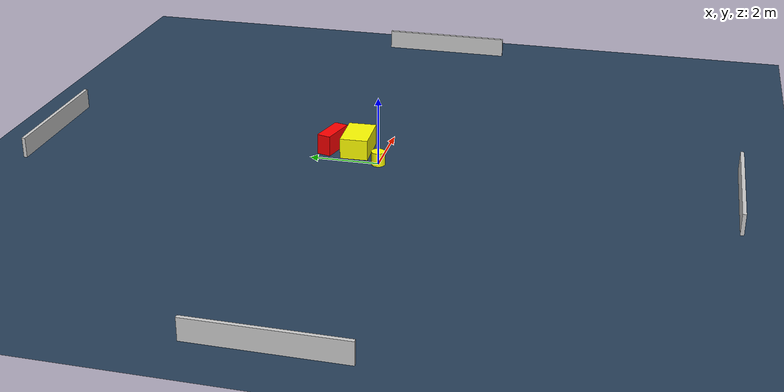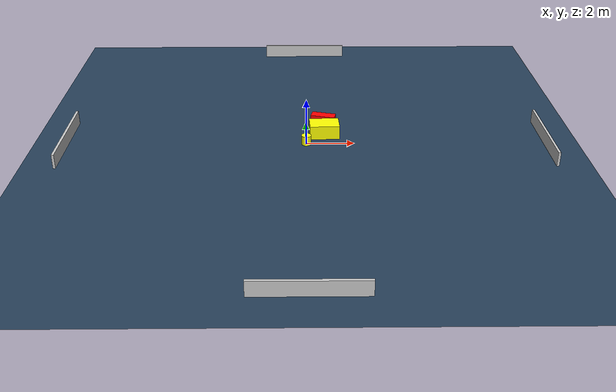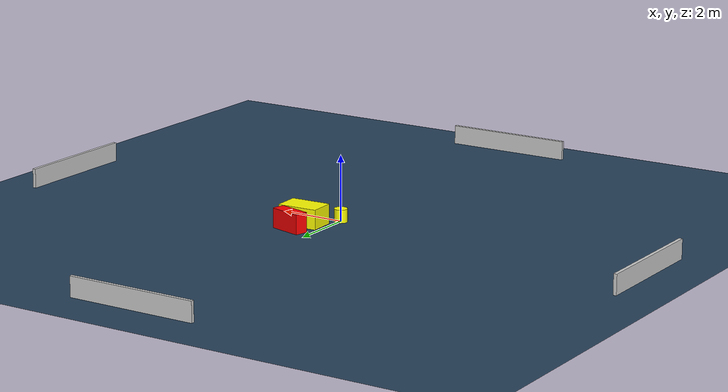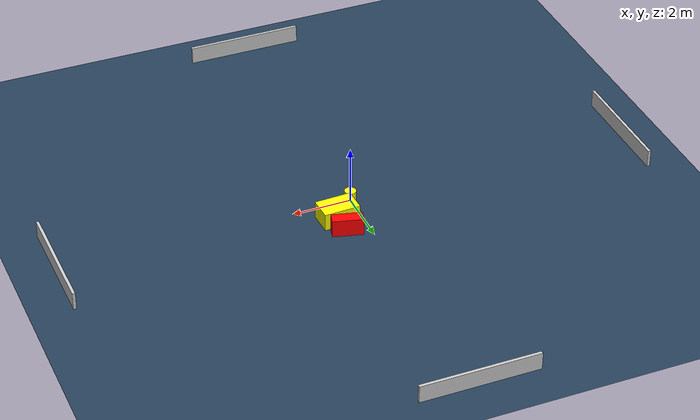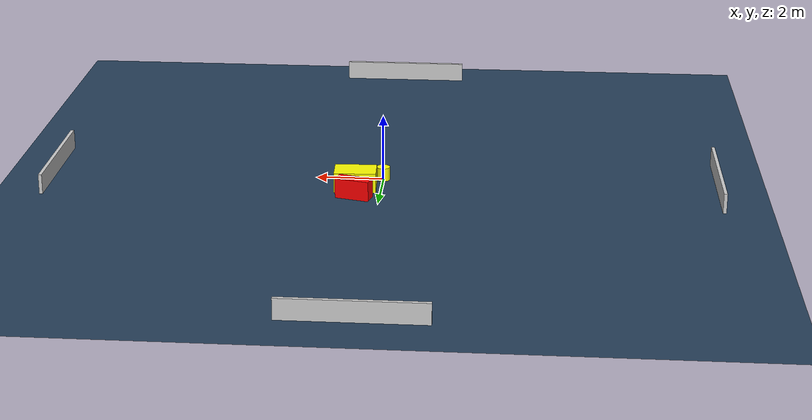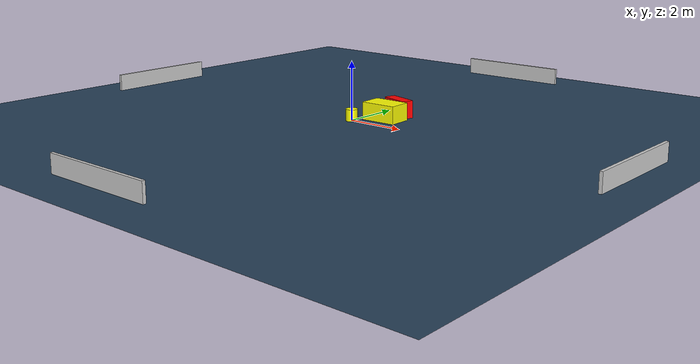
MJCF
<?xml version="1.0" ?>
<mujoco model="generated_environment">
  <option timestep="0.01" integrator="RK4" cone="elliptic"/>
  <default>
    <geom density="1"/>
  </default>
  <asset>
    <texture builtin="gradient" height="3072" name="skybox" rgb1="0.3 0.5 0.7" rgb2="0 0 0" type="skybox" width="512"/>
    <texture builtin="checker" height="300" name="groundplane" rgb1="0.2 0.3 0.4" rgb2="0.1 0.2 0.3" type="2d" width="300"/>
    <material name="groundplane" reflectance="0.2" texrepeat="5 5" texture="groundplane"/>
  </asset>
  <worldbody>
    <light dir="0 0 -1" directional="true" pos="0 0 1.5"/>
    <geom condim="3" friction="0.5 0.005 0.001" material="groundplane" name="floor" pos="0 0 0" size="0 0 0.05" type="plane"/>
    <body name="walls">
      <geom name="wall_1" condim="4" pos="-10.0 0.0 0.3" rgba="0.800000011920929 0.800000011920929 0.800000011920929 1.0" size="0.05 2.0 0.3" type="box"/>
      <geom name="wall_2" condim="4" pos="10.0 0.0 0.3" rgba="0.800000011920929 0.800000011920929 0.800000011920929 1.0" size="0.05 2.0 0.3" type="box"/>
      <geom name="wall_3" condim="4" pos="0.0 -10.0 0.3" rgba="0.800000011920929 0.800000011920929 0.800000011920929 1.0" size="2.0 0.05 0.3" type="box"/>
      <geom name="wall_4" condim="4" pos="0.0 10.0 0.3" rgba="0.800000011920929 0.800000011920929 0.800000011920929 1.0" size="2.0 0.05 0.3" type="box"/>
    </body>
    <body name="robot">
      <joint name="joint_x" type="slide" pos="0 0 0" axis="1 0 0"/>
      <joint name="joint_y" type="slide" pos="0 0 0" axis="0 1 0"/>
      <geom name="robot" type="cylinder" pos="0.0 0.0 0.2" size="0.2 0.2 0.0" mass="5.0" friction="1.0 0.005 0.0001" condim="4" rgba="1.0 1.0 0.0 1.0"/>
    </body>
    <body name="obstacle_1_movable">
      <geom name="obstacle_1_movable" condim="4" pos="0.7724881182816614 0.7917480038882585 0.3" euler="0 0 182.20926405005673" friction="0.0 0.005 0.001" rgba="1.0 1.0 0.0 1.0" size="0.6230343042647846 0.4036947988269658 0.3" type="box" mass="0.1"/>
      <joint type="free"/>
    </body>
    <body name="obstacle_2_static">
      <geom name="obstacle_2_static" condim="4" pos="0.7515721245735114 1.5594813607872056 0.3" euler="0 0 165.30949411888136" friction="0.0 0.005 0.001" rgba="1.0 0.0 0.0 1.0" size="0.5153343389375727 0.20151169524450563 0.3" type="box"/>
    </body>
  </worldbody>
  <actuator>
    <motor name="actuator_x" joint="joint_x" gear="1" ctrlrange="-1 1"/>
    <motor name="actuator_y" joint="joint_y" gear="1" ctrlrange="-1 1"/>
  </actuator>
</mujoco>
